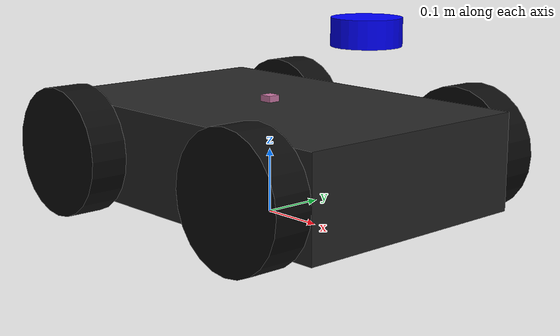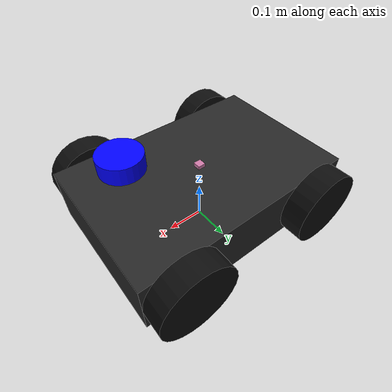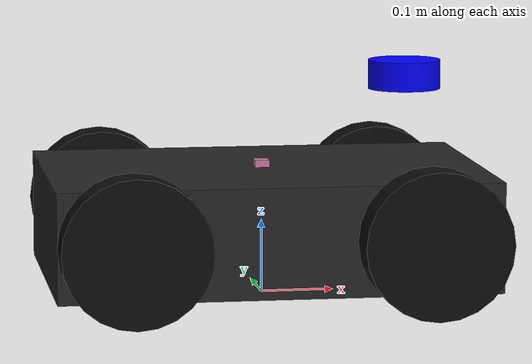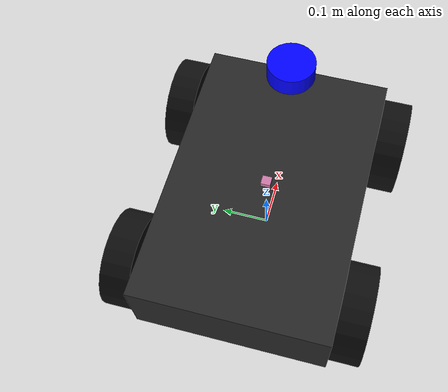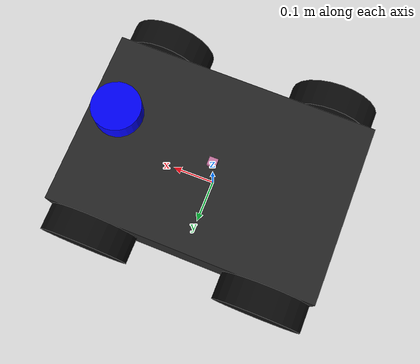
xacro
<?xml version="1.0"?>
<robot xmlns:xacro="http://www.ros.org/wiki/xacro" name="delivery_rover">

  <!-- ==================== PARAMETERS ==================== -->
  <xacro:property name="wheel_radius" value="0.10" />
  <xacro:property name="wheel_length" value="0.06" />
  <xacro:property name="wheel_x_offset" value="0.20" />
  <xacro:property name="wheel_y_offset" value="0.23" />
  <xacro:property name="wheel_separation_eff" value="0.456" />

  <!-- ==================== BASE FOOTPRINT & LINK ==================== -->
  <link name="base_footprint"/>

  <joint name="base_footprint_joint" type="fixed">
    <parent link="base_footprint"/>
    <child link="base_link"/>
    <origin xyz="0 0 0.10" rpy="0 0 0"/>
  </joint>

  <link name="base_link">
    <visual>
      <geometry>
        <box size="0.60 0.40 0.15"/>
      </geometry>
      <material name="chassis_dark">
        <color rgba="0.15 0.15 0.15 1.0"/>
      </material>
    </visual>
    <collision>
      <geometry>
        <box size="0.60 0.40 0.15"/>
      </geometry>
    </collision>
    <inertial>
      <mass value="15.0"/>
      <origin xyz="0 0 0" rpy="0 0 0"/>
      <inertia ixx="0.25" ixy="0" ixz="0" iyy="0.50" iyz="0" izz="0.65"/>
    </inertial>
  </link>

  <!-- ==================== WHEEL MACRO ==================== -->
  <xacro:macro name="wheel" params="prefix x_reflect y_reflect">
    <link name="${prefix}_wheel_link">
      <visual>
        <geometry>
          <cylinder radius="${wheel_radius}" length="${wheel_length}"/>
        </geometry>
        <material name="wheel_black">
          <color rgba="0.05 0.05 0.05 1.0"/>
        </material>
      </visual>
      <collision>
        <geometry>
          <cylinder radius="${wheel_radius}" length="${wheel_length}"/>
        </geometry>
      </collision>
      <inertial>
        <mass value="0.8"/>
        <origin xyz="0 0 0" rpy="0 0 0"/>
        <inertia ixx="0.0022" ixy="0" ixz="0" iyy="0.0022" iyz="0" izz="0.004"/>
      </inertial>
    </link>

    <joint name="${prefix}_wheel_joint" type="continuous">
      <parent link="base_link"/>
      <child link="${prefix}_wheel_link"/>
      <origin xyz="${x_reflect * wheel_x_offset} ${y_reflect * wheel_y_offset} 0.0" rpy="-1.5708 0 0"/>
      <axis xyz="0 0 1"/>
    </joint>

    <gazebo reference="${prefix}_wheel_link">
      <material>Gazebo/Black</material>
      <mu1>1.5</mu1>
      <mu2>0.5</mu2>
      <fdir1>1 0 0</fdir1>
      <kp>1000000.0</kp>
      <kd>100.0</kd>
      <min_depth>0.001</min_depth>
    </gazebo>
  </xacro:macro>

  <!-- INSTANTIATE WHEELS -->
  <xacro:wheel prefix="front_left"  x_reflect="1"  y_reflect="1"/>
  <xacro:wheel prefix="front_right" x_reflect="1"  y_reflect="-1"/>
  <xacro:wheel prefix="rear_left"   x_reflect="-1" y_reflect="1"/>
  <xacro:wheel prefix="rear_right"  x_reflect="-1" y_reflect="-1"/>

  <!-- ==================== IMU SENSOR ==================== -->
  <link name="imu_link">
    <visual>
      <geometry>
        <box size="0.02 0.02 0.01"/>
      </geometry>
    </visual>
  </link>

  <joint name="imu_joint" type="fixed">
    <parent link="base_link"/>
    <child link="imu_link"/>
    <origin xyz="0.0 0.0 0.08" rpy="0 0 0"/>
  </joint>

  <!-- ==================== 2D LIDAR ==================== -->
  <link name="lidar_link">
    <visual>
      <geometry>
        <cylinder radius="0.05" length="0.04"/>
      </geometry>
      <material name="blue">
        <color rgba="0 0 1 1"/>
      </material>
    </visual>
    <collision>
      <geometry>
        <cylinder radius="0.05" length="0.04"/>
      </geometry>
    </collision>
  </link>

  <joint name="lidar_joint" type="fixed">
    <parent link="base_link"/>
    <child link="lidar_link"/>
    <origin xyz="0.20 0.0 0.20" rpy="0 0 0"/>
  </joint>

  <!-- ==================== GAZEBO SENSOR PLUGINS ==================== -->
  <gazebo reference="imu_link">
    <sensor name="imu_sensor" type="imu">
      <always_on>1</always_on>
      <update_rate>50</update_rate>
      <topic>imu/data</topic>
      <frame_id>imu_link</frame_id>
    </sensor>
  </gazebo>

  <gazebo reference="lidar_link">
    <sensor name="gpu_lidar" type="gpu_lidar">
      <update_rate>12</update_rate>
      <topic>scan</topic>
      <gz_frame_id>lidar_link</gz_frame_id>
      <lidar>
        <scan>
          <horizontal>
            <samples>200</samples>
            <resolution>1</resolution>
            <min_angle>-3.14159</min_angle>
            <max_angle>3.14159</max_angle>
          </horizontal>
        </scan>
        <range>
          <min>0.30</min>
          <max>12.0</max>
        </range>
      </lidar>
      <always_on>1</always_on>
      <visualize>false</visualize>
    </sensor>
  </gazebo>

  <gazebo reference="base_link">
    <material>Gazebo/DarkGrey</material>
  </gazebo>

  <!-- ==================== GAZEBO DRIVE & SYSTEM PLUGINS ==================== -->
  <gazebo>
    <plugin filename="ignition-gazebo-sensors-system" name="ignition::gazebo::systems::Sensors">
      <render_engine>ogre</render_engine>
    </plugin>

    <plugin filename="ignition-gazebo-imu-system" name="ignition::gazebo::systems::Imu">
    </plugin>

    <plugin filename="ignition-gazebo-diff-drive-system" name="ignition::gazebo::systems::DiffDrive">
      <left_joint>front_left_wheel_joint</left_joint>
      <left_joint>rear_left_wheel_joint</left_joint>
      <right_joint>front_right_wheel_joint</right_joint>
      <right_joint>rear_right_wheel_joint</right_joint>

      <wheel_separation>${wheel_separation_eff}</wheel_separation>
      <wheel_radius>${wheel_radius}</wheel_radius>
      <wheel_torque>100.0</wheel_torque>

      <topic>cmd_vel</topic>
      <odom_topic>odom</odom_topic>
      <frame_id>odom</frame_id>
      <child_frame_id>base_footprint</child_frame_id>
      <odom_publisher_frequency>30</odom_publisher_frequency>
      <publish_odom_tf>false</publish_odom_tf>
    </plugin>

    <plugin filename="ignition-gazebo-joint-state-publisher-system" name="ignition::gazebo::systems::JointStatePublisher">
      <topic>joint_states</topic>
      <update_rate>30</update_rate>
    </plugin>
  </gazebo>

</robot>
